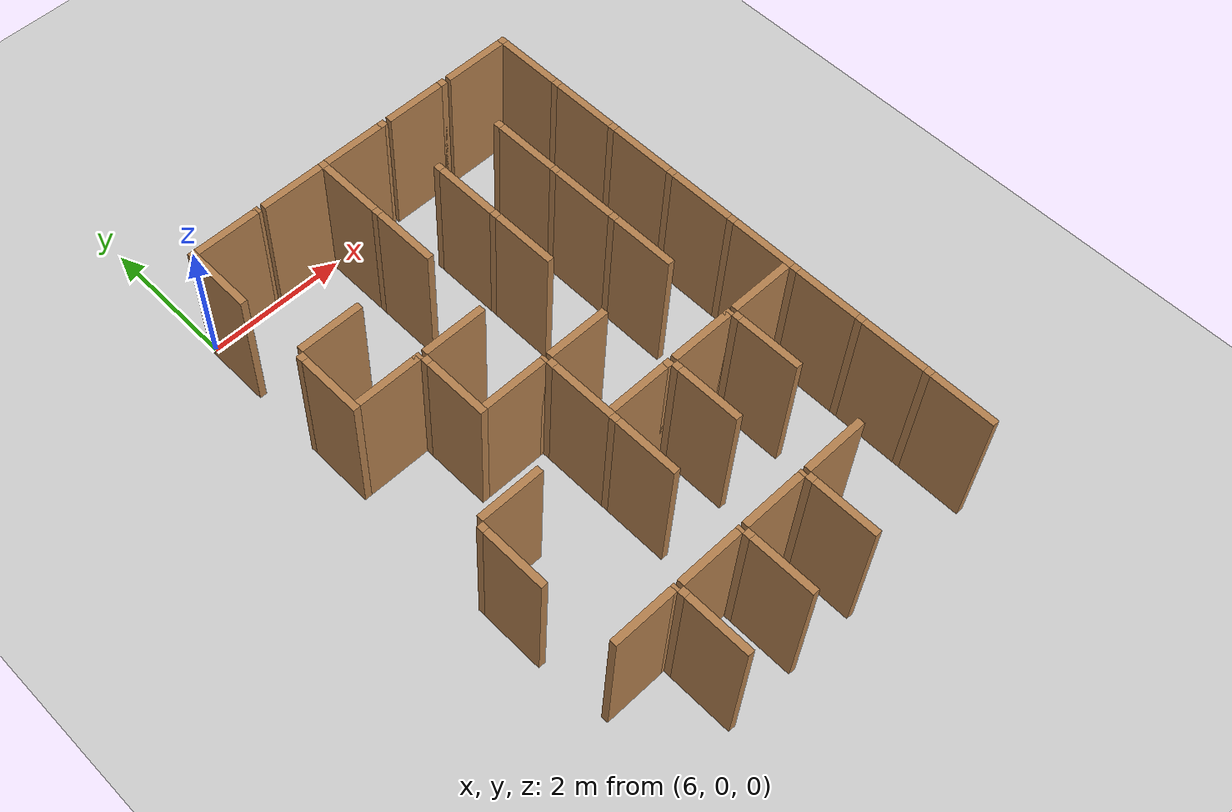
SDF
<sdf version="1.6">
 <world name="default">
  <include><uri>model://sun</uri></include>
  <model name="ground_plane">
   <static>true</static>
   <link name="link">
    <collision name="collision"><geometry><plane><size>12.0 12.0</size></plane></geometry></collision>
    <visual name="visual">
     <cast_shadows>false</cast_shadows>
     <geometry><plane><size>12.0 12.0</size></plane></geometry>
     <material>
      <script><uri>file://media/materials/scripts/gazebo.material</uri><name>Gazebo/Grey</name></script>
     </material>
    </visual>
   </link>
   <pose>6.0 -6.0 0 0 0 0</pose>
  </model>
  <model name="vwall_0_6">
   <pose>6.0 -0.5 1.0 0 0 0</pose>
   <link name="link">
    <collision name="collision"><geometry><box><size>0.1 0.9 2</size></box></geometry></collision>
    <visual name="visual">
     <geometry><box><size>0.1 0.9 2</size></box></geometry>
     <material>
      <script><uri>file://media/materials/scripts/gazebo.material</uri><name>Gazebo/Wood</name></script>
     </material>
    </visual>
   </link>
  </model>
  <model name="joint_6.0_0.0">
   <pose>6.0 0.0 1.0 0 0 0</pose>
   <link name="link">
    <collision name="collision"><geometry><box><size>0.1 0.1 2</size></box></geometry></collision>
    <visual name="visual">
     <geometry><box><size>0.1 0.1 2</size></box></geometry>
     <material>
      <script><uri>file://media/materials/scripts/gazebo.material</uri><name>Gazebo/Wood</name></script>
     </material>
    </visual>
   </link>
  </model>
  <model name="vwall_0_8">
   <pose>8.0 -0.5 1.0 0 0 0</pose>
   <link name="link">
    <collision name="collision"><geometry><box><size>0.1 0.9 2</size></box></geometry></collision>
    <visual name="visual">
     <geometry><box><size>0.1 0.9 2</size></box></geometry>
     <material>
      <script><uri>file://media/materials/scripts/gazebo.material</uri><name>Gazebo/Wood</name></script>
     </material>
    </visual>
   </link>
  </model>
  <model name="joint_8.0_0.0">
   <pose>8.0 0.0 1.0 0 0 0</pose>
   <link name="link">
    <collision name="collision"><geometry><box><size>0.1 0.1 2</size></box></geometry></collision>
    <visual name="visual">
     <geometry><box><size>0.1 0.1 2</size></box></geometry>
     <material>
      <script><uri>file://media/materials/scripts/gazebo.material</uri><name>Gazebo/Wood</name></script>
     </material>
    </visual>
   </link>
  </model>
  <model name="vwall_0_11">
   <pose>11.0 -0.5 1.0 0 0 0</pose>
   <link name="link">
    <collision name="collision"><geometry><box><size>0.1 0.9 2</size></box></geometry></collision>
    <visual name="visual">
     <geometry><box><size>0.1 0.9 2</size></box></geometry>
     <material>
      <script><uri>file://media/materials/scripts/gazebo.material</uri><name>Gazebo/Wood</name></script>
     </material>
    </visual>
   </link>
  </model>
  <model name="joint_11.0_0.0">
   <pose>11.0 0.0 1.0 0 0 0</pose>
   <link name="link">
    <collision name="collision"><geometry><box><size>0.1 0.1 2</size></box></geometry></collision>
    <visual name="visual">
     <geometry><box><size>0.1 0.1 2</size></box></geometry>
     <material>
      <script><uri>file://media/materials/scripts/gazebo.material</uri><name>Gazebo/Wood</name></script>
     </material>
    </visual>
   </link>
  </model>
  <model name="vwall_1_8">
   <pose>8.0 -1.5 1.0 0 0 0</pose>
   <link name="link">
    <collision name="collision"><geometry><box><size>0.1 0.9 2</size></box></geometry></collision>
    <visual name="visual">
     <geometry><box><size>0.1 0.9 2</size></box></geometry>
     <material>
      <script><uri>file://media/materials/scripts/gazebo.material</uri><name>Gazebo/Wood</name></script>
     </material>
    </visual>
   </link>
  </model>
  <model name="joint_8.0_-1.0">
   <pose>8.0 -1.0 1.0 0 0 0</pose>
   <link name="link">
    <collision name="collision"><geometry><box><size>0.1 0.1 2</size></box></geometry></collision>
    <visual name="visual">
     <geometry><box><size>0.1 0.1 2</size></box></geometry>
     <material>
      <script><uri>file://media/materials/scripts/gazebo.material</uri><name>Gazebo/Wood</name></script>
     </material>
    </visual>
   </link>
  </model>
  <model name="vwall_1_9">
   <pose>9.0 -1.5 1.0 0 0 0</pose>
   <link name="link">
    <collision name="collision"><geometry><box><size>0.1 0.9 2</size></box></geometry></collision>
    <visual name="visual">
     <geometry><box><size>0.1 0.9 2</size></box></geometry>
     <material>
      <script><uri>file://media/materials/scripts/gazebo.material</uri><name>Gazebo/Wood</name></script>
     </material>
    </visual>
   </link>
  </model>
  <model name="joint_9.0_-1.0">
   <pose>9.0 -1.0 1.0 0 0 0</pose>
   <link name="link">
    <collision name="collision"><geometry><box><size>0.1 0.1 2</size></box></geometry></collision>
    <visual name="visual">
     <geometry><box><size>0.1 0.1 2</size></box></geometry>
     <material>
      <script><uri>file://media/materials/scripts/gazebo.material</uri><name>Gazebo/Wood</name></script>
     </material>
    </visual>
   </link>
  </model>
  <model name="vwall_1_10">
   <pose>10.0 -1.5 1.0 0 0 0</pose>
   <link name="link">
    <collision name="collision"><geometry><box><size>0.1 0.9 2</size></box></geometry></collision>
    <visual name="visual">
     <geometry><box><size>0.1 0.9 2</size></box></geometry>
     <material>
      <script><uri>file://media/materials/scripts/gazebo.material</uri><name>Gazebo/Wood</name></script>
     </material>
    </visual>
   </link>
  </model>
  <model name="joint_10.0_-1.0">
   <pose>10.0 -1.0 1.0 0 0 0</pose>
   <link name="link">
    <collision name="collision"><geometry><box><size>0.1 0.1 2</size></box></geometry></collision>
    <visual name="visual">
     <geometry><box><size>0.1 0.1 2</size></box></geometry>
     <material>
      <script><uri>file://media/materials/scripts/gazebo.material</uri><name>Gazebo/Wood</name></script>
     </material>
    </visual>
   </link>
  </model>
  <model name="vwall_1_11">
   <pose>11.0 -1.5 1.0 0 0 0</pose>
   <link name="link">
    <collision name="collision"><geometry><box><size>0.1 0.9 2</size></box></geometry></collision>
    <visual name="visual">
     <geometry><box><size>0.1 0.9 2</size></box></geometry>
     <material>
      <script><uri>file://media/materials/scripts/gazebo.material</uri><name>Gazebo/Wood</name></script>
     </material>
    </visual>
   </link>
  </model>
  <model name="joint_11.0_-1.0">
   <pose>11.0 -1.0 1.0 0 0 0</pose>
   <link name="link">
    <collision name="collision"><geometry><box><size>0.1 0.1 2</size></box></geometry></collision>
    <visual name="visual">
     <geometry><box><size>0.1 0.1 2</size></box></geometry>
     <material>
      <script><uri>file://media/materials/scripts/gazebo.material</uri><name>Gazebo/Wood</name></script>
     </material>
    </visual>
   </link>
  </model>
  <model name="vwall_2_6">
   <pose>6.0 -2.5 1.0 0 0 0</pose>
   <link name="link">
    <collision name="collision"><geometry><box><size>0.1 0.9 2</size></box></geometry></collision>
    <visual name="visual">
     <geometry><box><size>0.1 0.9 2</size></box></geometry>
     <material>
      <script><uri>file://media/materials/scripts/gazebo.material</uri><name>Gazebo/Wood</name></script>
     </material>
    </visual>
   </link>
  </model>
  <model name="joint_6.0_-2.0">
   <pose>6.0 -2.0 1.0 0 0 0</pose>
   <link name="link">
    <collision name="collision"><geometry><box><size>0.1 0.1 2</size></box></geometry></collision>
    <visual name="visual">
     <geometry><box><size>0.1 0.1 2</size></box></geometry>
     <material>
      <script><uri>file://media/materials/scripts/gazebo.material</uri><name>Gazebo/Wood</name></script>
     </material>
    </visual>
   </link>
  </model>
  <model name="vwall_2_9">
   <pose>9.0 -2.5 1.0 0 0 0</pose>
   <link name="link">
    <collision name="collision"><geometry><box><size>0.1 0.9 2</size></box></geometry></collision>
    <visual name="visual">
     <geometry><box><size>0.1 0.9 2</size></box></geometry>
     <material>
      <script><uri>file://media/materials/scripts/gazebo.material</uri><name>Gazebo/Wood</name></script>
     </material>
    </visual>
   </link>
  </model>
  <model name="joint_9.0_-2.0">
   <pose>9.0 -2.0 1.0 0 0 0</pose>
   <link name="link">
    <collision name="collision"><geometry><box><size>0.1 0.1 2</size></box></geometry></collision>
    <visual name="visual">
     <geometry><box><size>0.1 0.1 2</size></box></geometry>
     <material>
      <script><uri>file://media/materials/scripts/gazebo.material</uri><name>Gazebo/Wood</name></script>
     </material>
    </visual>
   </link>
  </model>
  <model name="vwall_2_10">
   <pose>10.0 -2.5 1.0 0 0 0</pose>
   <link name="link">
    <collision name="collision"><geometry><box><size>0.1 0.9 2</size></box></geometry></collision>
    <visual name="visual">
     <geometry><box><size>0.1 0.9 2</size></box></geometry>
     <material>
      <script><uri>file://media/materials/scripts/gazebo.material</uri><name>Gazebo/Wood</name></script>
     </material>
    </visual>
   </link>
  </model>
  <model name="joint_10.0_-2.0">
   <pose>10.0 -2.0 1.0 0 0 0</pose>
   <link name="link">
    <collision name="collision"><geometry><box><size>0.1 0.1 2</size></box></geometry></collision>
    <visual name="visual">
     <geometry><box><size>0.1 0.1 2</size></box></geometry>
     <material>
      <script><uri>file://media/materials/scripts/gazebo.material</uri><name>Gazebo/Wood</name></script>
     </material>
    </visual>
   </link>
  </model>
  <model name="vwall_2_11">
   <pose>11.0 -2.5 1.0 0 0 0</pose>
   <link name="link">
    <collision name="collision"><geometry><box><size>0.1 0.9 2</size></box></geometry></collision>
    <visual name="visual">
     <geometry><box><size>0.1 0.9 2</size></box></geometry>
     <material>
      <script><uri>file://media/materials/scripts/gazebo.material</uri><name>Gazebo/Wood</name></script>
     </material>
    </visual>
   </link>
  </model>
  <model name="joint_11.0_-2.0">
   <pose>11.0 -2.0 1.0 0 0 0</pose>
   <link name="link">
    <collision name="collision"><geometry><box><size>0.1 0.1 2</size></box></geometry></collision>
    <visual name="visual">
     <geometry><box><size>0.1 0.1 2</size></box></geometry>
     <material>
      <script><uri>file://media/materials/scripts/gazebo.material</uri><name>Gazebo/Wood</name></script>
     </material>
    </visual>
   </link>
  </model>
  <model name="vwall_3_7">
   <pose>7.0 -3.5 1.0 0 0 0</pose>
   <link name="link">
    <collision name="collision"><geometry><box><size>0.1 0.9 2</size></box></geometry></collision>
    <visual name="visual">
     <geometry><box><size>0.1 0.9 2</size></box></geometry>
     <material>
      <script><uri>file://media/materials/scripts/gazebo.material</uri><name>Gazebo/Wood</name></script>
     </material>
    </visual>
   </link>
  </model>
  <model name="joint_7.0_-3.0">
   <pose>7.0 -3.0 1.0 0 0 0</pose>
   <link name="link">
    <collision name="collision"><geometry><box><size>0.1 0.1 2</size></box></geometry></collision>
    <visual name="visual">
     <geometry><box><size>0.1 0.1 2</size></box></geometry>
     <material>
      <script><uri>file://media/materials/scripts/gazebo.material</uri><name>Gazebo/Wood</name></script>
     </material>
    </visual>
   </link>
  </model>
  <model name="vwall_3_10">
   <pose>10.0 -3.5 1.0 0 0 0</pose>
   <link name="link">
    <collision name="collision"><geometry><box><size>0.1 0.9 2</size></box></geometry></collision>
    <visual name="visual">
     <geometry><box><size>0.1 0.9 2</size></box></geometry>
     <material>
      <script><uri>file://media/materials/scripts/gazebo.material</uri><name>Gazebo/Wood</name></script>
     </material>
    </visual>
   </link>
  </model>
  <model name="joint_10.0_-3.0">
   <pose>10.0 -3.0 1.0 0 0 0</pose>
   <link name="link">
    <collision name="collision"><geometry><box><size>0.1 0.1 2</size></box></geometry></collision>
    <visual name="visual">
     <geometry><box><size>0.1 0.1 2</size></box></geometry>
     <material>
      <script><uri>file://media/materials/scripts/gazebo.material</uri><name>Gazebo/Wood</name></script>
     </material>
    </visual>
   </link>
  </model>
  <model name="vwall_3_11">
   <pose>11.0 -3.5 1.0 0 0 0</pose>
   <link name="link">
    <collision name="collision"><geometry><box><size>0.1 0.9 2</size></box></geometry></collision>
    <visual name="visual">
     <geometry><box><size>0.1 0.9 2</size></box></geometry>
     <material>
      <script><uri>file://media/materials/scripts/gazebo.material</uri><name>Gazebo/Wood</name></script>
     </material>
    </visual>
   </link>
  </model>
  <model name="joint_11.0_-3.0">
   <pose>11.0 -3.0 1.0 0 0 0</pose>
   <link name="link">
    <collision name="collision"><geometry><box><size>0.1 0.1 2</size></box></geometry></collision>
    <visual name="visual">
     <geometry><box><size>0.1 0.1 2</size></box></geometry>
     <material>
      <script><uri>file://media/materials/scripts/gazebo.material</uri><name>Gazebo/Wood</name></script>
     </material>
    </visual>
   </link>
  </model>
  <model name="vwall_4_8">
   <pose>8.0 -4.5 1.0 0 0 0</pose>
   <link name="link">
    <collision name="collision"><geometry><box><size>0.1 0.9 2</size></box></geometry></collision>
    <visual name="visual">
     <geometry><box><size>0.1 0.9 2</size></box></geometry>
     <material>
      <script><uri>file://media/materials/scripts/gazebo.material</uri><name>Gazebo/Wood</name></script>
     </material>
    </visual>
   </link>
  </model>
  <model name="joint_8.0_-4.0">
   <pose>8.0 -4.0 1.0 0 0 0</pose>
   <link name="link">
    <collision name="collision"><geometry><box><size>0.1 0.1 2</size></box></geometry></collision>
    <visual name="visual">
     <geometry><box><size>0.1 0.1 2</size></box></geometry>
     <material>
      <script><uri>file://media/materials/scripts/gazebo.material</uri><name>Gazebo/Wood</name></script>
     </material>
    </visual>
   </link>
  </model>
  <model name="vwall_4_11">
   <pose>11.0 -4.5 1.0 0 0 0</pose>
   <link name="link">
    <collision name="collision"><geometry><box><size>0.1 0.9 2</size></box></geometry></collision>
    <visual name="visual">
     <geometry><box><size>0.1 0.9 2</size></box></geometry>
     <material>
      <script><uri>file://media/materials/scripts/gazebo.material</uri><name>Gazebo/Wood</name></script>
     </material>
    </visual>
   </link>
  </model>
  <model name="joint_11.0_-4.0">
   <pose>11.0 -4.0 1.0 0 0 0</pose>
   <link name="link">
    <collision name="collision"><geometry><box><size>0.1 0.1 2</size></box></geometry></collision>
    <visual name="visual">
     <geometry><box><size>0.1 0.1 2</size></box></geometry>
     <material>
      <script><uri>file://media/materials/scripts/gazebo.material</uri><name>Gazebo/Wood</name></script>
     </material>
    </visual>
   </link>
  </model>
  <model name="vwall_5_6">
   <pose>6.0 -5.5 1.0 0 0 0</pose>
   <link name="link">
    <collision name="collision"><geometry><box><size>0.1 0.9 2</size></box></geometry></collision>
    <visual name="visual">
     <geometry><box><size>0.1 0.9 2</size></box></geometry>
     <material>
      <script><uri>file://media/materials/scripts/gazebo.material</uri><name>Gazebo/Wood</name></script>
     </material>
    </visual>
   </link>
  </model>
  <model name="joint_6.0_-5.0">
   <pose>6.0 -5.0 1.0 0 0 0</pose>
   <link name="link">
    <collision name="collision"><geometry><box><size>0.1 0.1 2</size></box></geometry></collision>
    <visual name="visual">
     <geometry><box><size>0.1 0.1 2</size></box></geometry>
     <material>
      <script><uri>file://media/materials/scripts/gazebo.material</uri><name>Gazebo/Wood</name></script>
     </material>
    </visual>
   </link>
  </model>
  <model name="vwall_5_8">
   <pose>8.0 -5.5 1.0 0 0 0</pose>
   <link name="link">
    <collision name="collision"><geometry><box><size>0.1 0.9 2</size></box></geometry></collision>
    <visual name="visual">
     <geometry><box><size>0.1 0.9 2</size></box></geometry>
     <material>
      <script><uri>file://media/materials/scripts/gazebo.material</uri><name>Gazebo/Wood</name></script>
     </material>
    </visual>
   </link>
  </model>
  <model name="joint_8.0_-5.0">
   <pose>8.0 -5.0 1.0 0 0 0</pose>
   <link name="link">
    <collision name="collision"><geometry><box><size>0.1 0.1 2</size></box></geometry></collision>
    <visual name="visual">
     <geometry><box><size>0.1 0.1 2</size></box></geometry>
     <material>
      <script><uri>file://media/materials/scripts/gazebo.material</uri><name>Gazebo/Wood</name></script>
     </material>
    </visual>
   </link>
  </model>
  <model name="vwall_5_9">
   <pose>9.0 -5.5 1.0 0 0 0</pose>
   <link name="link">
    <collision name="collision"><geometry><box><size>0.1 0.9 2</size></box></geometry></collision>
    <visual name="visual">
     <geometry><box><size>0.1 0.9 2</size></box></geometry>
     <material>
      <script><uri>file://media/materials/scripts/gazebo.material</uri><name>Gazebo/Wood</name></script>
     </material>
    </visual>
   </link>
  </model>
  <model name="joint_9.0_-5.0">
   <pose>9.0 -5.0 1.0 0 0 0</pose>
   <link name="link">
    <collision name="collision"><geometry><box><size>0.1 0.1 2</size></box></geometry></collision>
    <visual name="visual">
     <geometry><box><size>0.1 0.1 2</size></box></geometry>
     <material>
      <script><uri>file://media/materials/scripts/gazebo.material</uri><name>Gazebo/Wood</name></script>
     </material>
    </visual>
   </link>
  </model>
  <model name="vwall_5_10">
   <pose>10.0 -5.5 1.0 0 0 0</pose>
   <link name="link">
    <collision name="collision"><geometry><box><size>0.1 0.9 2</size></box></geometry></collision>
    <visual name="visual">
     <geometry><box><size>0.1 0.9 2</size></box></geometry>
     <material>
      <script><uri>file://media/materials/scripts/gazebo.material</uri><name>Gazebo/Wood</name></script>
     </material>
    </visual>
   </link>
  </model>
  <model name="joint_10.0_-5.0">
   <pose>10.0 -5.0 1.0 0 0 0</pose>
   <link name="link">
    <collision name="collision"><geometry><box><size>0.1 0.1 2</size></box></geometry></collision>
    <visual name="visual">
     <geometry><box><size>0.1 0.1 2</size></box></geometry>
     <material>
      <script><uri>file://media/materials/scripts/gazebo.material</uri><name>Gazebo/Wood</name></script>
     </material>
    </visual>
   </link>
  </model>
  <model name="vwall_5_11">
   <pose>11.0 -5.5 1.0 0 0 0</pose>
   <link name="link">
    <collision name="collision"><geometry><box><size>0.1 0.9 2</size></box></geometry></collision>
    <visual name="visual">
     <geometry><box><size>0.1 0.9 2</size></box></geometry>
     <material>
      <script><uri>file://media/materials/scripts/gazebo.material</uri><name>Gazebo/Wood</name></script>
     </material>
    </visual>
   </link>
  </model>
  <model name="joint_11.0_-5.0">
   <pose>11.0 -5.0 1.0 0 0 0</pose>
   <link name="link">
    <collision name="collision"><geometry><box><size>0.1 0.1 2</size></box></geometry></collision>
    <visual name="visual">
     <geometry><box><size>0.1 0.1 2</size></box></geometry>
     <material>
      <script><uri>file://media/materials/scripts/gazebo.material</uri><name>Gazebo/Wood</name></script>
     </material>
    </visual>
   </link>
  </model>
  <model name="vwall_6_11">
   <pose>11.0 -6.5 1.0 0 0 0</pose>
   <link name="link">
    <collision name="collision"><geometry><box><size>0.1 0.9 2</size></box></geometry></collision>
    <visual name="visual">
     <geometry><box><size>0.1 0.9 2</size></box></geometry>
     <material>
      <script><uri>file://media/materials/scripts/gazebo.material</uri><name>Gazebo/Wood</name></script>
     </material>
    </visual>
   </link>
  </model>
  <model name="joint_11.0_-6.0">
   <pose>11.0 -6.0 1.0 0 0 0</pose>
   <link name="link">
    <collision name="collision"><geometry><box><size>0.1 0.1 2</size></box></geometry></collision>
    <visual name="visual">
     <geometry><box><size>0.1 0.1 2</size></box></geometry>
     <material>
      <script><uri>file://media/materials/scripts/gazebo.material</uri><name>Gazebo/Wood</name></script>
     </material>
    </visual>
   </link>
  </model>
  <model name="vwall_7_7">
   <pose>7.0 -7.5 1.0 0 0 0</pose>
   <link name="link">
    <collision name="collision"><geometry><box><size>0.1 0.9 2</size></box></geometry></collision>
    <visual name="visual">
     <geometry><box><size>0.1 0.9 2</size></box></geometry>
     <material>
      <script><uri>file://media/materials/scripts/gazebo.material</uri><name>Gazebo/Wood</name></script>
     </material>
    </visual>
   </link>
  </model>
  <model name="joint_7.0_-7.0">
   <pose>7.0 -7.0 1.0 0 0 0</pose>
   <link name="link">
    <collision name="collision"><geometry><box><size>0.1 0.1 2</size></box></geometry></collision>
    <visual name="visual">
     <geometry><box><size>0.1 0.1 2</size></box></geometry>
     <material>
      <script><uri>file://media/materials/scripts/gazebo.material</uri><name>Gazebo/Wood</name></script>
     </material>
    </visual>
   </link>
  </model>
  <model name="vwall_7_8">
   <pose>8.0 -7.5 1.0 0 0 0</pose>
   <link name="link">
    <collision name="collision"><geometry><box><size>0.1 0.9 2</size></box></geometry></collision>
    <visual name="visual">
     <geometry><box><size>0.1 0.9 2</size></box></geometry>
     <material>
      <script><uri>file://media/materials/scripts/gazebo.material</uri><name>Gazebo/Wood</name></script>
     </material>
    </visual>
   </link>
  </model>
  <model name="joint_8.0_-7.0">
   <pose>8.0 -7.0 1.0 0 0 0</pose>
   <link name="link">
    <collision name="collision"><geometry><box><size>0.1 0.1 2</size></box></geometry></collision>
    <visual name="visual">
     <geometry><box><size>0.1 0.1 2</size></box></geometry>
     <material>
      <script><uri>file://media/materials/scripts/gazebo.material</uri><name>Gazebo/Wood</name></script>
     </material>
    </visual>
   </link>
  </model>
  <model name="vwall_7_9">
   <pose>9.0 -7.5 1.0 0 0 0</pose>
   <link name="link">
    <collision name="collision"><geometry><box><size>0.1 0.9 2</size></box></geometry></collision>
    <visual name="visual">
     <geometry><box><size>0.1 0.9 2</size></box></geometry>
     <material>
      <script><uri>file://media/materials/scripts/gazebo.material</uri><name>Gazebo/Wood</name></script>
     </material>
    </visual>
   </link>
  </model>
  <model name="joint_9.0_-7.0">
   <pose>9.0 -7.0 1.0 0 0 0</pose>
   <link name="link">
    <collision name="collision"><geometry><box><size>0.1 0.1 2</size></box></geometry></collision>
    <visual name="visual">
     <geometry><box><size>0.1 0.1 2</size></box></geometry>
     <material>
      <script><uri>file://media/materials/scripts/gazebo.material</uri><name>Gazebo/Wood</name></script>
     </material>
    </visual>
   </link>
  </model>
  <model name="vwall_7_11">
   <pose>11.0 -7.5 1.0 0 0 0</pose>
   <link name="link">
    <collision name="collision"><geometry><box><size>0.1 0.9 2</size></box></geometry></collision>
    <visual name="visual">
     <geometry><box><size>0.1 0.9 2</size></box></geometry>
     <material>
      <script><uri>file://media/materials/scripts/gazebo.material</uri><name>Gazebo/Wood</name></script>
     </material>
    </visual>
   </link>
  </model>
  <model name="joint_11.0_-7.0">
   <pose>11.0 -7.0 1.0 0 0 0</pose>
   <link name="link">
    <collision name="collision"><geometry><box><size>0.1 0.1 2</size></box></geometry></collision>
    <visual name="visual">
     <geometry><box><size>0.1 0.1 2</size></box></geometry>
     <material>
      <script><uri>file://media/materials/scripts/gazebo.material</uri><name>Gazebo/Wood</name></script>
     </material>
    </visual>
   </link>
  </model>
  <model name="hwall_0_6">
   <pose>6.5 0.0 1.0 0 0 0</pose>
   <link name="link">
    <collision name="collision"><geometry><box><size>0.9 0.1 2</size></box></geometry></collision>
    <visual name="visual">
     <geometry><box><size>0.9 0.1 2</size></box></geometry>
     <material>
      <script><uri>file://media/materials/scripts/gazebo.material</uri><name>Gazebo/Wood</name></script>
     </material>
    </visual>
   </link>
  </model>
  <model name="joint_6.95_0.0">
   <pose>6.95 0.0 1.0 0 0 0</pose>
   <link name="link">
    <collision name="collision"><geometry><box><size>0.1 0.1 2</size></box></geometry></collision>
    <visual name="visual">
     <geometry><box><size>0.1 0.1 2</size></box></geometry>
     <material>
      <script><uri>file://media/materials/scripts/gazebo.material</uri><name>Gazebo/Wood</name></script>
     </material>
    </visual>
   </link>
  </model>
  <model name="hwall_0_7">
   <pose>7.5 0.0 1.0 0 0 0</pose>
   <link name="link">
    <collision name="collision"><geometry><box><size>0.9 0.1 2</size></box></geometry></collision>
    <visual name="visual">
     <geometry><box><size>0.9 0.1 2</size></box></geometry>
     <material>
      <script><uri>file://media/materials/scripts/gazebo.material</uri><name>Gazebo/Wood</name></script>
     </material>
    </visual>
   </link>
  </model>
  <model name="hwall_0_8">
   <pose>8.5 0.0 1.0 0 0 0</pose>
   <link name="link">
    <collision name="collision"><geometry><box><size>0.9 0.1 2</size></box></geometry></collision>
    <visual name="visual">
     <geometry><box><size>0.9 0.1 2</size></box></geometry>
     <material>
      <script><uri>file://media/materials/scripts/gazebo.material</uri><name>Gazebo/Wood</name></script>
     </material>
    </visual>
   </link>
  </model>
  <model name="joint_8.95_0.0">
   <pose>8.95 0.0 1.0 0 0 0</pose>
   <link name="link">
    <collision name="collision"><geometry><box><size>0.1 0.1 2</size></box></geometry></collision>
    <visual name="visual">
     <geometry><box><size>0.1 0.1 2</size></box></geometry>
     <material>
      <script><uri>file://media/materials/scripts/gazebo.material</uri><name>Gazebo/Wood</name></script>
     </material>
    </visual>
   </link>
  </model>
  <model name="hwall_0_9">
   <pose>9.5 0.0 1.0 0 0 0</pose>
   <link name="link">
    <collision name="collision"><geometry><box><size>0.9 0.1 2</size></box></geometry></collision>
    <visual name="visual">
     <geometry><box><size>0.9 0.1 2</size></box></geometry>
     <material>
      <script><uri>file://media/materials/scripts/gazebo.material</uri><name>Gazebo/Wood</name></script>
     </material>
    </visual>
   </link>
  </model>
  <model name="joint_9.95_0.0">
   <pose>9.95 0.0 1.0 0 0 0</pose>
   <link name="link">
    <collision name="collision"><geometry><box><size>0.1 0.1 2</size></box></geometry></collision>
    <visual name="visual">
     <geometry><box><size>0.1 0.1 2</size></box></geometry>
     <material>
      <script><uri>file://media/materials/scripts/gazebo.material</uri><name>Gazebo/Wood</name></script>
     </material>
    </visual>
   </link>
  </model>
  <model name="hwall_0_10">
   <pose>10.5 0.0 1.0 0 0 0</pose>
   <link name="link">
    <collision name="collision"><geometry><box><size>0.9 0.1 2</size></box></geometry></collision>
    <visual name="visual">
     <geometry><box><size>0.9 0.1 2</size></box></geometry>
     <material>
      <script><uri>file://media/materials/scripts/gazebo.material</uri><name>Gazebo/Wood</name></script>
     </material>
    </visual>
   </link>
  </model>
  <model name="hwall_1_6">
   <pose>6.5 -1.9 1.0 0 0 0</pose>
   <link name="link">
    <collision name="collision"><geometry><box><size>0.9 0.1 2</size></box></geometry></collision>
    <visual name="visual">
     <geometry><box><size>0.9 0.1 2</size></box></geometry>
     <material>
      <script><uri>file://media/materials/scripts/gazebo.material</uri><name>Gazebo/Wood</name></script>
     </material>
    </visual>
   </link>
  </model>
  <model name="hwall_2_6">
   <pose>6.5 -2.9 1.0 0 0 0</pose>
   <link name="link">
    <collision name="collision"><geometry><box><size>0.9 0.1 2</size></box></geometry></collision>
    <visual name="visual">
     <geometry><box><size>0.9 0.1 2</size></box></geometry>
     <material>
      <script><uri>file://media/materials/scripts/gazebo.material</uri><name>Gazebo/Wood</name></script>
     </material>
    </visual>
   </link>
  </model>
  <model name="joint_6.95_-2.9">
   <pose>6.95 -2.9 1.0 0 0 0</pose>
   <link name="link">
    <collision name="collision"><geometry><box><size>0.1 0.1 2</size></box></geometry></collision>
    <visual name="visual">
     <geometry><box><size>0.1 0.1 2</size></box></geometry>
     <material>
      <script><uri>file://media/materials/scripts/gazebo.material</uri><name>Gazebo/Wood</name></script>
     </material>
    </visual>
   </link>
  </model>
  <model name="hwall_2_7">
   <pose>7.5 -2.9 1.0 0 0 0</pose>
   <link name="link">
    <collision name="collision"><geometry><box><size>0.9 0.1 2</size></box></geometry></collision>
    <visual name="visual">
     <geometry><box><size>0.9 0.1 2</size></box></geometry>
     <material>
      <script><uri>file://media/materials/scripts/gazebo.material</uri><name>Gazebo/Wood</name></script>
     </material>
    </visual>
   </link>
  </model>
  <model name="hwall_3_7">
   <pose>7.5 -3.9 1.0 0 0 0</pose>
   <link name="link">
    <collision name="collision"><geometry><box><size>0.9 0.1 2</size></box></geometry></collision>
    <visual name="visual">
     <geometry><box><size>0.9 0.1 2</size></box></geometry>
     <material>
      <script><uri>file://media/materials/scripts/gazebo.material</uri><name>Gazebo/Wood</name></script>
     </material>
    </visual>
   </link>
  </model>
  <model name="joint_7.95_-3.9">
   <pose>7.95 -3.9 1.0 0 0 0</pose>
   <link name="link">
    <collision name="collision"><geometry><box><size>0.1 0.1 2</size></box></geometry></collision>
    <visual name="visual">
     <geometry><box><size>0.1 0.1 2</size></box></geometry>
     <material>
      <script><uri>file://media/materials/scripts/gazebo.material</uri><name>Gazebo/Wood</name></script>
     </material>
    </visual>
   </link>
  </model>
  <model name="hwall_3_8">
   <pose>8.5 -3.9 1.0 0 0 0</pose>
   <link name="link">
    <collision name="collision"><geometry><box><size>0.9 0.1 2</size></box></geometry></collision>
    <visual name="visual">
     <geometry><box><size>0.9 0.1 2</size></box></geometry>
     <material>
      <script><uri>file://media/materials/scripts/gazebo.material</uri><name>Gazebo/Wood</name></script>
     </material>
    </visual>
   </link>
  </model>
  <model name="hwall_4_6">
   <pose>6.5 -4.9 1.0 0 0 0</pose>
   <link name="link">
    <collision name="collision"><geometry><box><size>0.9 0.1 2</size></box></geometry></collision>
    <visual name="visual">
     <geometry><box><size>0.9 0.1 2</size></box></geometry>
     <material>
      <script><uri>file://media/materials/scripts/gazebo.material</uri><name>Gazebo/Wood</name></script>
     </material>
    </visual>
   </link>
  </model>
  <model name="hwall_4_8">
   <pose>8.5 -4.9 1.0 0 0 0</pose>
   <link name="link">
    <collision name="collision"><geometry><box><size>0.9 0.1 2</size></box></geometry></collision>
    <visual name="visual">
     <geometry><box><size>0.9 0.1 2</size></box></geometry>
     <material>
      <script><uri>file://media/materials/scripts/gazebo.material</uri><name>Gazebo/Wood</name></script>
     </material>
    </visual>
   </link>
  </model>
  <model name="joint_8.95_-4.9">
   <pose>8.95 -4.9 1.0 0 0 0</pose>
   <link name="link">
    <collision name="collision"><geometry><box><size>0.1 0.1 2</size></box></geometry></collision>
    <visual name="visual">
     <geometry><box><size>0.1 0.1 2</size></box></geometry>
     <material>
      <script><uri>file://media/materials/scripts/gazebo.material</uri><name>Gazebo/Wood</name></script>
     </material>
    </visual>
   </link>
  </model>
  <model name="hwall_4_9">
   <pose>9.5 -4.9 1.0 0 0 0</pose>
   <link name="link">
    <collision name="collision"><geometry><box><size>0.9 0.1 2</size></box></geometry></collision>
    <visual name="visual">
     <geometry><box><size>0.9 0.1 2</size></box></geometry>
     <material>
      <script><uri>file://media/materials/scripts/gazebo.material</uri><name>Gazebo/Wood</name></script>
     </material>
    </visual>
   </link>
  </model>
  <model name="joint_9.95_-4.9">
   <pose>9.95 -4.9 1.0 0 0 0</pose>
   <link name="link">
    <collision name="collision"><geometry><box><size>0.1 0.1 2</size></box></geometry></collision>
    <visual name="visual">
     <geometry><box><size>0.1 0.1 2</size></box></geometry>
     <material>
      <script><uri>file://media/materials/scripts/gazebo.material</uri><name>Gazebo/Wood</name></script>
     </material>
    </visual>
   </link>
  </model>
  <model name="hwall_4_10">
   <pose>10.5 -4.9 1.0 0 0 0</pose>
   <link name="link">
    <collision name="collision"><geometry><box><size>0.9 0.1 2</size></box></geometry></collision>
    <visual name="visual">
     <geometry><box><size>0.9 0.1 2</size></box></geometry>
     <material>
      <script><uri>file://media/materials/scripts/gazebo.material</uri><name>Gazebo/Wood</name></script>
     </material>
    </visual>
   </link>
  </model>
  <model name="hwall_6_6">
   <pose>6.5 -6.9 1.0 0 0 0</pose>
   <link name="link">
    <collision name="collision"><geometry><box><size>0.9 0.1 2</size></box></geometry></collision>
    <visual name="visual">
     <geometry><box><size>0.9 0.1 2</size></box></geometry>
     <material>
      <script><uri>file://media/materials/scripts/gazebo.material</uri><name>Gazebo/Wood</name></script>
     </material>
    </visual>
   </link>
  </model>
  <model name="joint_6.95_-6.9">
   <pose>6.95 -6.9 1.0 0 0 0</pose>
   <link name="link">
    <collision name="collision"><geometry><box><size>0.1 0.1 2</size></box></geometry></collision>
    <visual name="visual">
     <geometry><box><size>0.1 0.1 2</size></box></geometry>
     <material>
      <script><uri>file://media/materials/scripts/gazebo.material</uri><name>Gazebo/Wood</name></script>
     </material>
    </visual>
   </link>
  </model>
  <model name="hwall_6_7">
   <pose>7.5 -6.9 1.0 0 0 0</pose>
   <link name="link">
    <collision name="collision"><geometry><box><size>0.9 0.1 2</size></box></geometry></collision>
    <visual name="visual">
     <geometry><box><size>0.9 0.1 2</size></box></geometry>
     <material>
      <script><uri>file://media/materials/scripts/gazebo.material</uri><name>Gazebo/Wood</name></script>
     </material>
    </visual>
   </link>
  </model>
  <model name="joint_7.95_-6.9">
   <pose>7.95 -6.9 1.0 0 0 0</pose>
   <link name="link">
    <collision name="collision"><geometry><box><size>0.1 0.1 2</size></box></geometry></collision>
    <visual name="visual">
     <geometry><box><size>0.1 0.1 2</size></box></geometry>
     <material>
      <script><uri>file://media/materials/scripts/gazebo.material</uri><name>Gazebo/Wood</name></script>
     </material>
    </visual>
   </link>
  </model>
  <model name="hwall_6_8">
   <pose>8.5 -6.9 1.0 0 0 0</pose>
   <link name="link">
    <collision name="collision"><geometry><box><size>0.9 0.1 2</size></box></geometry></collision>
    <visual name="visual">
     <geometry><box><size>0.9 0.1 2</size></box></geometry>
     <material>
      <script><uri>file://media/materials/scripts/gazebo.material</uri><name>Gazebo/Wood</name></script>
     </material>
    </visual>
   </link>
  </model>
  <model name="joint_8.95_-6.9">
   <pose>8.95 -6.9 1.0 0 0 0</pose>
   <link name="link">
    <collision name="collision"><geometry><box><size>0.1 0.1 2</size></box></geometry></collision>
    <visual name="visual">
     <geometry><box><size>0.1 0.1 2</size></box></geometry>
     <material>
      <script><uri>file://media/materials/scripts/gazebo.material</uri><name>Gazebo/Wood</name></script>
     </material>
    </visual>
   </link>
  </model>
  <model name="hwall_6_9">
   <pose>9.5 -6.9 1.0 0 0 0</pose>
   <link name="link">
    <collision name="collision"><geometry><box><size>0.9 0.1 2</size></box></geometry></collision>
    <visual name="visual">
     <geometry><box><size>0.9 0.1 2</size></box></geometry>
     <material>
      <script><uri>file://media/materials/scripts/gazebo.material</uri><name>Gazebo/Wood</name></script>
     </material>
    </visual>
   </link>
  </model>
 </world>
</sdf>
